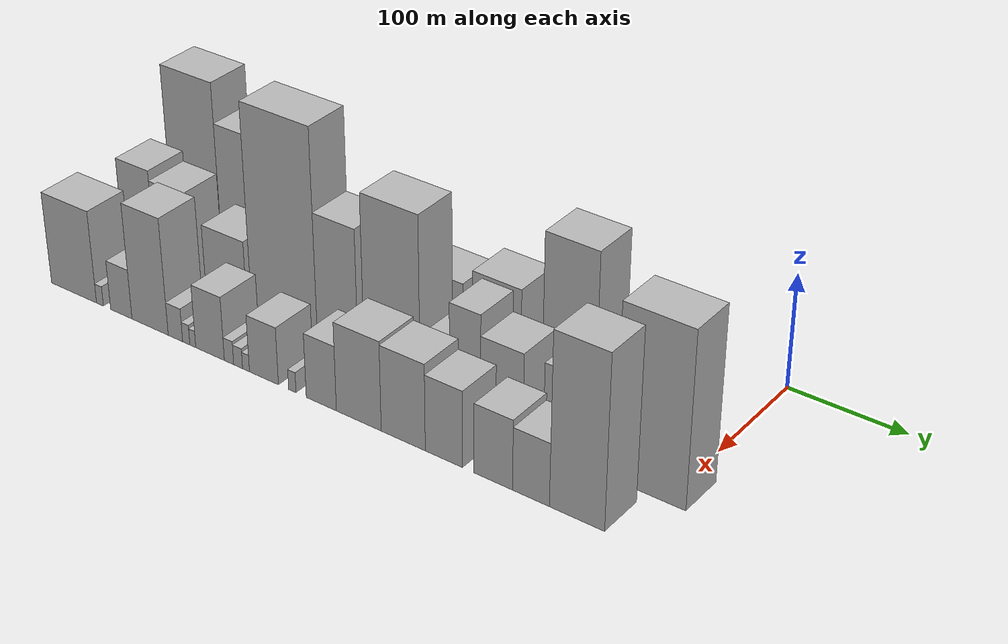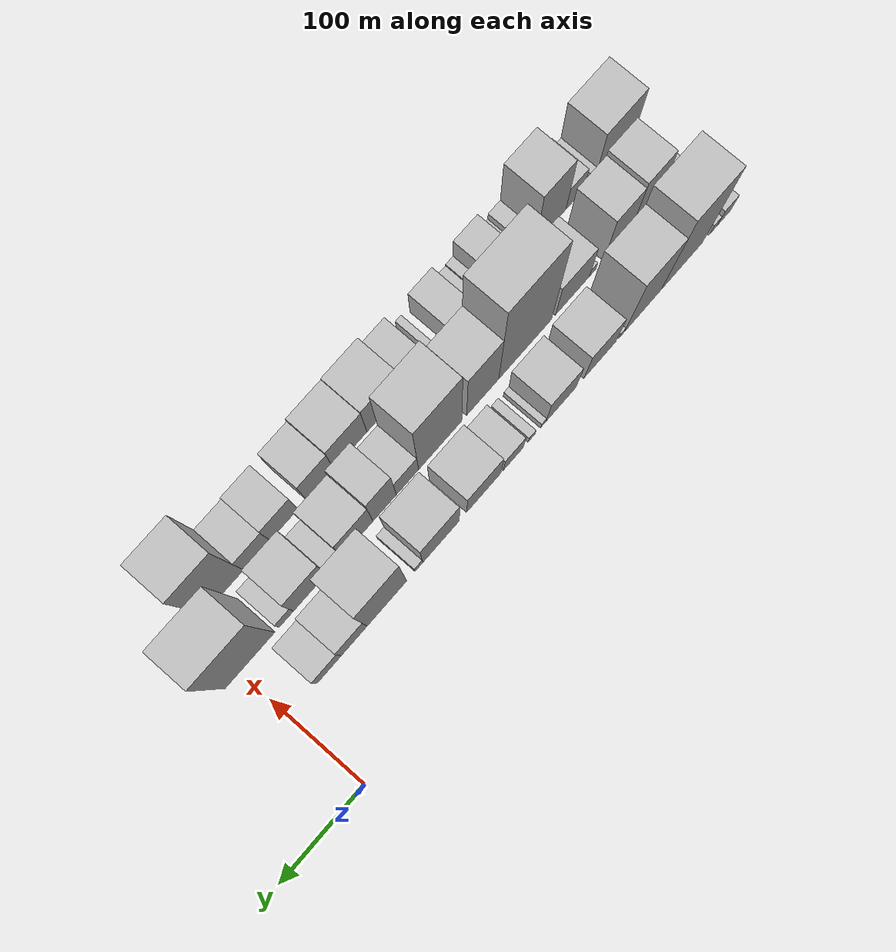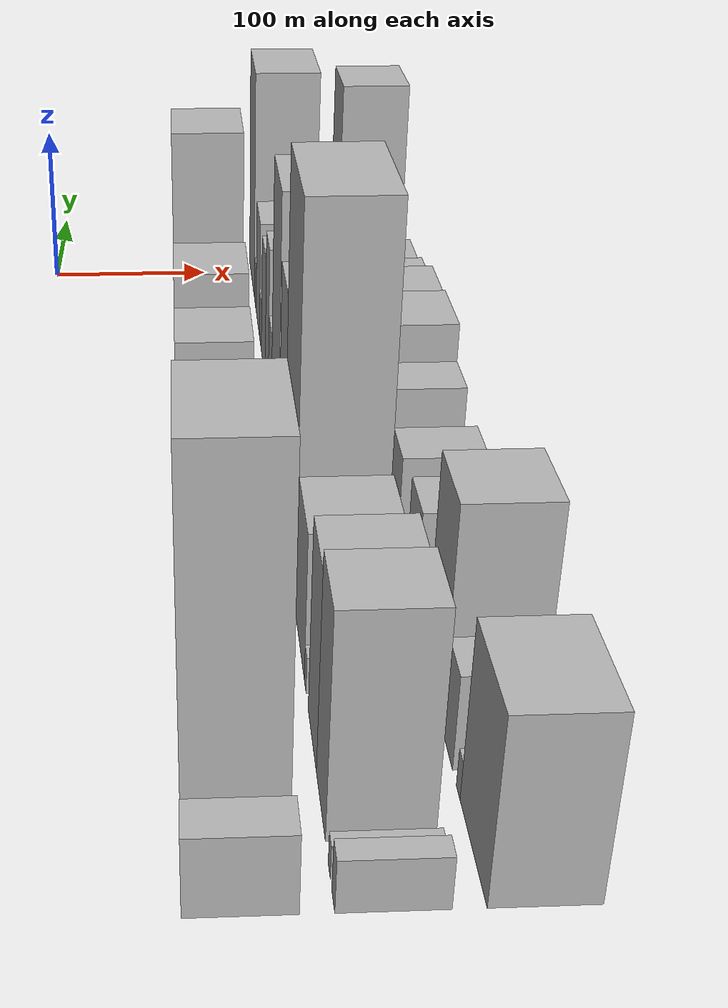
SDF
<sdf version="1.6">
 <world name="default">
  <model name="building_1">
   <static>1</static>
   <pose>100.0000 -538.9919 0 0.000000 0.000000 0.000000</pose>
   <link name="link">
    <pose>0 0 18.00 0 0 0</pose>
    <collision name="collision"><geometry><box><size>40.0000 18.0163 36.0000</size></box></geometry></collision>
    <visual name="visual">
     <cast_shadows>0</cast_shadows>
     <geometry><box><size>40.0000 18.0163 36.0000</size></box></geometry>
     <material>
      <script>
       <uri>model://HANNAS_wall/materials/scripts</uri>
       <uri>model://HANNAS_wall/materials/textures</uri>
       <name>vrc/HANNAS_wall</name>
      </script>
     </material>
    </visual>
   </link>
  </model>
  <model name="building_2">
   <static>1</static>
   <pose>100.0000 -524.8373 0 0.000000 0.000000 0.000000</pose>
   <link name="link">
    <pose>0 0 12.00 0 0 0</pose>
    <collision name="collision"><geometry><box><size>40.0000 10.2929 24.0000</size></box></geometry></collision>
    <visual name="visual">
     <cast_shadows>0</cast_shadows>
     <geometry><box><size>40.0000 10.2929 24.0000</size></box></geometry>
     <material>
      <script>
       <uri>model://HANNAS_wall/materials/scripts</uri>
       <uri>model://HANNAS_wall/materials/textures</uri>
       <name>vrc/HANNAS_wall</name>
      </script>
     </material>
    </visual>
   </link>
  </model>
  <model name="building_3">
   <static>1</static>
   <pose>100.0000 -483.8453 0 0.000000 0.000000 0.000000</pose>
   <link name="link">
    <pose>0 0 82.50 0 0 0</pose>
    <collision name="collision"><geometry><box><size>40.0000 53.6910 165.0000</size></box></geometry></collision>
    <visual name="visual">
     <cast_shadows>0</cast_shadows>
     <geometry><box><size>40.0000 53.6910 165.0000</size></box></geometry>
     <material>
      <script>
       <uri>model://HANNAS_wall/materials/scripts</uri>
       <uri>model://HANNAS_wall/materials/textures</uri>
       <name>vrc/HANNAS_wall</name>
      </script>
     </material>
    </visual>
   </link>
  </model>
  <model name="building_4">
   <static>1</static>
   <pose>100.0000 -433.3912 0 0.000000 0.000000 0.000000</pose>
   <link name="link">
    <pose>0 0 64.50 0 0 0</pose>
    <collision name="collision"><geometry><box><size>40.0000 47.2173 129.0000</size></box></geometry></collision>
    <visual name="visual">
     <cast_shadows>0</cast_shadows>
     <geometry><box><size>40.0000 47.2173 129.0000</size></box></geometry>
     <material>
      <script>
       <uri>model://HANNAS_wall/materials/scripts</uri>
       <uri>model://HANNAS_wall/materials/textures</uri>
       <name>vrc/HANNAS_wall</name>
      </script>
     </material>
    </visual>
   </link>
  </model>
  <model name="building_5">
   <static>1</static>
   <pose>100.0000 -406.5223 0 0.000000 0.000000 0.000000</pose>
   <link name="link">
    <pose>0 0 7.50 0 0 0</pose>
    <collision name="collision"><geometry><box><size>40.0000 6.5204 15.0000</size></box></geometry></collision>
    <visual name="visual">
     <cast_shadows>0</cast_shadows>
     <geometry><box><size>40.0000 6.5204 15.0000</size></box></geometry>
     <material>
      <script>
       <uri>model://HANNAS_wall/materials/scripts</uri>
       <uri>model://HANNAS_wall/materials/textures</uri>
       <name>vrc/HANNAS_wall</name>
      </script>
     </material>
    </visual>
   </link>
  </model>
  <model name="building_6">
   <static>1</static>
   <pose>100.0000 -379.0470 0 0.000000 0.000000 0.000000</pose>
   <link name="link">
    <pose>0 0 34.50 0 0 0</pose>
    <collision name="collision"><geometry><box><size>40.0000 40.4301 69.0000</size></box></geometry></collision>
    <visual name="visual">
     <cast_shadows>0</cast_shadows>
     <geometry><box><size>40.0000 40.4301 69.0000</size></box></geometry>
     <material>
      <script>
       <uri>model://HANNAS_wall/materials/scripts</uri>
       <uri>model://HANNAS_wall/materials/textures</uri>
       <name>vrc/HANNAS_wall</name>
      </script>
     </material>
    </visual>
   </link>
  </model>
  <model name="building_7">
   <static>1</static>
   <pose>100.0000 -329.8130 0 0.000000 0.000000 0.000000</pose>
   <link name="link">
    <pose>0 0 33.00 0 0 0</pose>
    <collision name="collision"><geometry><box><size>40.0000 38.0380 66.0000</size></box></geometry></collision>
    <visual name="visual">
     <cast_shadows>0</cast_shadows>
     <geometry><box><size>40.0000 38.0380 66.0000</size></box></geometry>
     <material>
      <script>
       <uri>model://HANNAS_wall/materials/scripts</uri>
       <uri>model://HANNAS_wall/materials/textures</uri>
       <name>vrc/HANNAS_wall</name>
      </script>
     </material>
    </visual>
   </link>
  </model>
  <model name="building_8">
   <static>1</static>
   <pose>100.0000 -307.6681 0 0.000000 0.000000 0.000000</pose>
   <link name="link">
    <pose>0 0 7.50 0 0 0</pose>
    <collision name="collision"><geometry><box><size>40.0000 6.2518 15.0000</size></box></geometry></collision>
    <visual name="visual">
     <cast_shadows>0</cast_shadows>
     <geometry><box><size>40.0000 6.2518 15.0000</size></box></geometry>
     <material>
      <script>
       <uri>model://HANNAS_wall/materials/scripts</uri>
       <uri>model://HANNAS_wall/materials/textures</uri>
       <name>vrc/HANNAS_wall</name>
      </script>
     </material>
    </visual>
   </link>
  </model>
  <model name="building_9">
   <static>1</static>
   <pose>100.0000 -293.1980 0 0.000000 0.000000 0.000000</pose>
   <link name="link">
    <pose>0 0 9.00 0 0 0</pose>
    <collision name="collision"><geometry><box><size>40.0000 8.6883 18.0000</size></box></geometry></collision>
    <visual name="visual">
     <cast_shadows>0</cast_shadows>
     <geometry><box><size>40.0000 8.6883 18.0000</size></box></geometry>
     <material>
      <script>
       <uri>model://HANNAS_wall/materials/scripts</uri>
       <uri>model://HANNAS_wall/materials/textures</uri>
       <name>vrc/HANNAS_wall</name>
      </script>
     </material>
    </visual>
   </link>
  </model>
  <model name="building_10">
   <static>1</static>
   <pose>100.0000 -270.4324 0 0.000000 0.000000 0.000000</pose>
   <link name="link">
    <pose>0 0 22.50 0 0 0</pose>
    <collision name="collision"><geometry><box><size>40.0000 24.8430 45.0000</size></box></geometry></collision>
    <visual name="visual">
     <cast_shadows>0</cast_shadows>
     <geometry><box><size>40.0000 24.8430 45.0000</size></box></geometry>
     <material>
      <script>
       <uri>model://HANNAS_wall/materials/scripts</uri>
       <uri>model://HANNAS_wall/materials/textures</uri>
       <name>vrc/HANNAS_wall</name>
      </script>
     </material>
    </visual>
   </link>
  </model>
  <model name="building_11">
   <static>1</static>
   <pose>100.0000 -234.0322 0 0.000000 0.000000 0.000000</pose>
   <link name="link">
    <pose>0 0 36.00 0 0 0</pose>
    <collision name="collision"><geometry><box><size>40.0000 41.9573 72.0000</size></box></geometry></collision>
    <visual name="visual">
     <cast_shadows>0</cast_shadows>
     <geometry><box><size>40.0000 41.9573 72.0000</size></box></geometry>
     <material>
      <script>
       <uri>model://HANNAS_wall/materials/scripts</uri>
       <uri>model://HANNAS_wall/materials/textures</uri>
       <name>vrc/HANNAS_wall</name>
      </script>
     </material>
    </visual>
   </link>
  </model>
  <model name="building_12">
   <static>1</static>
   <pose>100.0000 -181.8780 0 0.000000 0.000000 0.000000</pose>
   <link name="link">
    <pose>0 0 43.50 0 0 0</pose>
    <collision name="collision"><geometry><box><size>40.0000 44.3511 87.0000</size></box></geometry></collision>
    <visual name="visual">
     <cast_shadows>0</cast_shadows>
     <geometry><box><size>40.0000 44.3511 87.0000</size></box></geometry>
     <material>
      <script>
       <uri>model://HANNAS_wall/materials/scripts</uri>
       <uri>model://HANNAS_wall/materials/textures</uri>
       <name>vrc/HANNAS_wall</name>
      </script>
     </material>
    </visual>
   </link>
  </model>
  <model name="building_13">
   <static>1</static>
   <pose>100.0000 -154.9889 0 0.000000 0.000000 0.000000</pose>
   <link name="link">
    <pose>0 0 10.50 0 0 0</pose>
    <collision name="collision"><geometry><box><size>40.0000 9.4271 21.0000</size></box></geometry></collision>
    <visual name="visual">
     <cast_shadows>0</cast_shadows>
     <geometry><box><size>40.0000 9.4271 21.0000</size></box></geometry>
     <material>
      <script>
       <uri>model://HANNAS_wall/materials/scripts</uri>
       <uri>model://HANNAS_wall/materials/textures</uri>
       <name>vrc/HANNAS_wall</name>
      </script>
     </material>
    </visual>
   </link>
  </model>
  <model name="building_14">
   <static>1</static>
   <pose>100.0000 -116.7056 0 0.000000 0.000000 0.000000</pose>
   <link name="link">
    <pose>0 0 72.00 0 0 0</pose>
    <collision name="collision"><geometry><box><size>40.0000 47.1394 144.0000</size></box></geometry></collision>
    <visual name="visual">
     <cast_shadows>0</cast_shadows>
     <geometry><box><size>40.0000 47.1394 144.0000</size></box></geometry>
     <material>
      <script>
       <uri>model://HANNAS_wall/materials/scripts</uri>
       <uri>model://HANNAS_wall/materials/textures</uri>
       <name>vrc/HANNAS_wall</name>
      </script>
     </material>
    </visual>
   </link>
  </model>
  <model name="building_15">
   <static>1</static>
   <pose>100.0000 -77.7543 0 0.000000 0.000000 0.000000</pose>
   <link name="link">
    <pose>0 0 30.00 0 0 0</pose>
    <collision name="collision"><geometry><box><size>40.0000 30.7633 60.0000</size></box></geometry></collision>
    <visual name="visual">
     <cast_shadows>0</cast_shadows>
     <geometry><box><size>40.0000 30.7633 60.0000</size></box></geometry>
     <material>
      <script>
       <uri>model://HANNAS_wall/materials/scripts</uri>
       <uri>model://HANNAS_wall/materials/textures</uri>
       <name>vrc/HANNAS_wall</name>
      </script>
     </material>
    </visual>
   </link>
  </model>
  <model name="building_16">
   <static>1</static>
   <pose>100.0000 -48.2294 0 0.000000 0.000000 0.000000</pose>
   <link name="link">
    <pose>0 0 24.00 0 0 0</pose>
    <collision name="collision"><geometry><box><size>40.0000 28.2866 48.0000</size></box></geometry></collision>
    <visual name="visual">
     <cast_shadows>0</cast_shadows>
     <geometry><box><size>40.0000 28.2866 48.0000</size></box></geometry>
     <material>
      <script>
       <uri>model://HANNAS_wall/materials/scripts</uri>
       <uri>model://HANNAS_wall/materials/textures</uri>
       <name>vrc/HANNAS_wall</name>
      </script>
     </material>
    </visual>
   </link>
  </model>
  <model name="building_38">
   <static>1</static>
   <pose>152.0000 -543.0522 0 0.000000 0.000000 0.000000</pose>
   <link name="link">
    <pose>0 0 12.00 0 0 0</pose>
    <collision name="collision"><geometry><box><size>40.0000 9.8955 24.0000</size></box></geometry></collision>
    <visual name="visual">
     <cast_shadows>0</cast_shadows>
     <geometry><box><size>40.0000 9.8955 24.0000</size></box></geometry>
     <material>
      <script>
       <uri>model://HANNAS_wall/materials/scripts</uri>
       <uri>model://HANNAS_wall/materials/textures</uri>
       <name>vrc/HANNAS_wall</name>
      </script>
     </material>
    </visual>
   </link>
  </model>
  <model name="building_39">
   <static>1</static>
   <pose>152.0000 -529.5200 0 0.000000 0.000000 0.000000</pose>
   <link name="link">
    <pose>0 0 7.50 0 0 0</pose>
    <collision name="collision"><geometry><box><size>40.0000 7.1690 15.0000</size></box></geometry></collision>
    <visual name="visual">
     <cast_shadows>0</cast_shadows>
     <geometry><box><size>40.0000 7.1690 15.0000</size></box></geometry>
     <material>
      <script>
       <uri>model://HANNAS_wall/materials/scripts</uri>
       <uri>model://HANNAS_wall/materials/textures</uri>
       <name>vrc/HANNAS_wall</name>
      </script>
     </material>
    </visual>
   </link>
  </model>
  <model name="building_40">
   <static>1</static>
   <pose>152.0000 -498.5052 0 0.000000 0.000000 0.000000</pose>
   <link name="link">
    <pose>0 0 51.00 0 0 0</pose>
    <collision name="collision"><geometry><box><size>40.0000 34.8606 102.0000</size></box></geometry></collision>
    <visual name="visual">
     <cast_shadows>0</cast_shadows>
     <geometry><box><size>40.0000 34.8606 102.0000</size></box></geometry>
     <material>
      <script>
       <uri>model://HANNAS_wall/materials/scripts</uri>
       <uri>model://HANNAS_wall/materials/textures</uri>
       <name>vrc/HANNAS_wall</name>
      </script>
     </material>
    </visual>
   </link>
  </model>
  <model name="building_41">
   <static>1</static>
   <pose>152.0000 -463.4202 0 0.000000 0.000000 0.000000</pose>
   <link name="link">
    <pose>0 0 46.50 0 0 0</pose>
    <collision name="collision"><geometry><box><size>40.0000 35.3093 93.0000</size></box></geometry></collision>
    <visual name="visual">
     <cast_shadows>0</cast_shadows>
     <geometry><box><size>40.0000 35.3093 93.0000</size></box></geometry>
     <material>
      <script>
       <uri>model://HANNAS_wall/materials/scripts</uri>
       <uri>model://HANNAS_wall/materials/textures</uri>
       <name>vrc/HANNAS_wall</name>
      </script>
     </material>
    </visual>
   </link>
  </model>
  <model name="building_42">
   <static>1</static>
   <pose>152.0000 -431.5094 0 0.000000 0.000000 0.000000</pose>
   <link name="link">
    <pose>0 0 9.00 0 0 0</pose>
    <collision name="collision"><geometry><box><size>40.0000 8.5124 18.0000</size></box></geometry></collision>
    <visual name="visual">
     <cast_shadows>0</cast_shadows>
     <geometry><box><size>40.0000 8.5124 18.0000</size></box></geometry>
     <material>
      <script>
       <uri>model://HANNAS_wall/materials/scripts</uri>
       <uri>model://HANNAS_wall/materials/textures</uri>
       <name>vrc/HANNAS_wall</name>
      </script>
     </material>
    </visual>
   </link>
  </model>
  <model name="building_43">
   <static>1</static>
   <pose>152.0000 -405.7660 0 0.000000 0.000000 0.000000</pose>
   <link name="link">
    <pose>0 0 36.00 0 0 0</pose>
    <collision name="collision"><geometry><box><size>40.0000 42.9744 72.0000</size></box></geometry></collision>
    <visual name="visual">
     <cast_shadows>0</cast_shadows>
     <geometry><box><size>40.0000 42.9744 72.0000</size></box></geometry>
     <material>
      <script>
       <uri>model://HANNAS_wall/materials/scripts</uri>
       <uri>model://HANNAS_wall/materials/textures</uri>
       <name>vrc/HANNAS_wall</name>
      </script>
     </material>
    </visual>
   </link>
  </model>
  <model name="building_44">
   <static>1</static>
   <pose>152.0000 -346.0198 0 0.000000 0.000000 0.000000</pose>
   <link name="link">
    <pose>0 0 97.50 0 0 0</pose>
    <collision name="collision"><geometry><box><size>40.0000 66.5181 195.0000</size></box></geometry></collision>
    <visual name="visual">
     <cast_shadows>0</cast_shadows>
     <geometry><box><size>40.0000 66.5181 195.0000</size></box></geometry>
     <material>
      <script>
       <uri>model://HANNAS_wall/materials/scripts</uri>
       <uri>model://HANNAS_wall/materials/textures</uri>
       <name>vrc/HANNAS_wall</name>
      </script>
     </material>
    </visual>
   </link>
  </model>
  <model name="building_45">
   <static>1</static>
   <pose>152.0000 -292.8285 0 0.000000 0.000000 0.000000</pose>
   <link name="link">
    <pose>0 0 61.50 0 0 0</pose>
    <collision name="collision"><geometry><box><size>40.0000 39.8645 123.0000</size></box></geometry></collision>
    <visual name="visual">
     <cast_shadows>0</cast_shadows>
     <geometry><box><size>40.0000 39.8645 123.0000</size></box></geometry>
     <material>
      <script>
       <uri>model://HANNAS_wall/materials/scripts</uri>
       <uri>model://HANNAS_wall/materials/textures</uri>
       <name>vrc/HANNAS_wall</name>
      </script>
     </material>
    </visual>
   </link>
  </model>
  <model name="building_46">
   <static>1</static>
   <pose>152.0000 -240.3963 0 0.000000 0.000000 0.000000</pose>
   <link name="link">
    <pose>0 0 78.00 0 0 0</pose>
    <collision name="collision"><geometry><box><size>40.0000 52.9998 156.0000</size></box></geometry></collision>
    <visual name="visual">
     <cast_shadows>0</cast_shadows>
     <geometry><box><size>40.0000 52.9998 156.0000</size></box></geometry>
     <material>
      <script>
       <uri>model://HANNAS_wall/materials/scripts</uri>
       <uri>model://HANNAS_wall/materials/textures</uri>
       <name>vrc/HANNAS_wall</name>
      </script>
     </material>
    </visual>
   </link>
  </model>
  <model name="building_47">
   <static>1</static>
   <pose>152.0000 -200.2656 0 0.000000 0.000000 0.000000</pose>
   <link name="link">
    <pose>0 0 27.00 0 0 0</pose>
    <collision name="collision"><geometry><box><size>40.0000 27.2617 54.0000</size></box></geometry></collision>
    <visual name="visual">
     <cast_shadows>0</cast_shadows>
     <geometry><box><size>40.0000 27.2617 54.0000</size></box></geometry>
     <material>
      <script>
       <uri>model://HANNAS_wall/materials/scripts</uri>
       <uri>model://HANNAS_wall/materials/textures</uri>
       <name>vrc/HANNAS_wall</name>
      </script>
     </material>
    </visual>
   </link>
  </model>
  <model name="building_48">
   <static>1</static>
   <pose>152.0000 -172.6165 0 0.000000 0.000000 0.000000</pose>
   <link name="link">
    <pose>0 0 46.50 0 0 0</pose>
    <collision name="collision"><geometry><box><size>40.0000 28.0365 93.0000</size></box></geometry></collision>
    <visual name="visual">
     <cast_shadows>0</cast_shadows>
     <geometry><box><size>40.0000 28.0365 93.0000</size></box></geometry>
     <material>
      <script>
       <uri>model://HANNAS_wall/materials/scripts</uri>
       <uri>model://HANNAS_wall/materials/textures</uri>
       <name>vrc/HANNAS_wall</name>
      </script>
     </material>
    </visual>
   </link>
  </model>
  <model name="building_49">
   <static>1</static>
   <pose>152.0000 -139.6529 0 0.000000 0.000000 0.000000</pose>
   <link name="link">
    <pose>0 0 37.50 0 0 0</pose>
    <collision name="collision"><geometry><box><size>40.0000 37.8907 75.0000</size></box></geometry></collision>
    <visual name="visual">
     <cast_shadows>0</cast_shadows>
     <geometry><box><size>40.0000 37.8907 75.0000</size></box></geometry>
     <material>
      <script>
       <uri>model://HANNAS_wall/materials/scripts</uri>
       <uri>model://HANNAS_wall/materials/textures</uri>
       <name>vrc/HANNAS_wall</name>
      </script>
     </material>
    </visual>
   </link>
  </model>
  <model name="building_50">
   <static>1</static>
   <pose>152.0000 -111.7760 0 0.000000 0.000000 0.000000</pose>
   <link name="link">
    <pose>0 0 15.00 0 0 0</pose>
    <collision name="collision"><geometry><box><size>40.0000 17.8630 30.0000</size></box></geometry></collision>
    <visual name="visual">
     <cast_shadows>0</cast_shadows>
     <geometry><box><size>40.0000 17.8630 30.0000</size></box></geometry>
     <material>
      <script>
       <uri>model://HANNAS_wall/materials/scripts</uri>
       <uri>model://HANNAS_wall/materials/textures</uri>
       <name>vrc/HANNAS_wall</name>
      </script>
     </material>
    </visual>
   </link>
  </model>
  <model name="building_51">
   <static>1</static>
   <pose>152.0000 -83.2439 0 0.000000 0.000000 0.000000</pose>
   <link name="link">
    <pose>0 0 37.50 0 0 0</pose>
    <collision name="collision"><geometry><box><size>40.0000 39.2013 75.0000</size></box></geometry></collision>
    <visual name="visual">
     <cast_shadows>0</cast_shadows>
     <geometry><box><size>40.0000 39.2013 75.0000</size></box></geometry>
     <material>
      <script>
       <uri>model://HANNAS_wall/materials/scripts</uri>
       <uri>model://HANNAS_wall/materials/textures</uri>
       <name>vrc/HANNAS_wall</name>
      </script>
     </material>
    </visual>
   </link>
  </model>
  <model name="building_52">
   <static>1</static>
   <pose>152.0000 -55.1002 0 0.000000 0.000000 0.000000</pose>
   <link name="link">
    <pose>0 0 15.00 0 0 0</pose>
    <collision name="collision"><geometry><box><size>40.0000 17.0862 30.0000</size></box></geometry></collision>
    <visual name="visual">
     <cast_shadows>0</cast_shadows>
     <geometry><box><size>40.0000 17.0862 30.0000</size></box></geometry>
     <material>
      <script>
       <uri>model://HANNAS_wall/materials/scripts</uri>
       <uri>model://HANNAS_wall/materials/textures</uri>
       <name>vrc/HANNAS_wall</name>
      </script>
     </material>
    </visual>
   </link>
  </model>
  <model name="building_53">
   <static>1</static>
   <pose>152.0000 -12.3465 0 0.000000 0.000000 0.000000</pose>
   <link name="link">
    <pose>0 0 75.00 0 0 0</pose>
    <collision name="collision"><geometry><box><size>40.0000 58.4212 150.0000</size></box></geometry></collision>
    <visual name="visual">
     <cast_shadows>0</cast_shadows>
     <geometry><box><size>40.0000 58.4212 150.0000</size></box></geometry>
     <material>
      <script>
       <uri>model://HANNAS_wall/materials/scripts</uri>
       <uri>model://HANNAS_wall/materials/textures</uri>
       <name>vrc/HANNAS_wall</name>
      </script>
     </material>
    </visual>
   </link>
  </model>
  <model name="building_67">
   <static>1</static>
   <pose>204.0000 -522.8611 0 0.000000 0.000000 0.000000</pose>
   <link name="link">
    <pose>0 0 42.00 0 0 0</pose>
    <collision name="collision"><geometry><box><size>40.0000 50.2778 84.0000</size></box></geometry></collision>
    <visual name="visual">
     <cast_shadows>0</cast_shadows>
     <geometry><box><size>40.0000 50.2778 84.0000</size></box></geometry>
     <material>
      <script>
       <uri>model://HANNAS_wall/materials/scripts</uri>
       <uri>model://HANNAS_wall/materials/textures</uri>
       <name>vrc/HANNAS_wall</name>
      </script>
     </material>
    </visual>
   </link>
  </model>
  <model name="building_68">
   <static>1</static>
   <pose>204.0000 -493.9434 0 0.000000 0.000000 0.000000</pose>
   <link name="link">
    <pose>0 0 9.00 0 0 0</pose>
    <collision name="collision"><geometry><box><size>40.0000 7.5576 18.0000</size></box></geometry></collision>
    <visual name="visual">
     <cast_shadows>0</cast_shadows>
     <geometry><box><size>40.0000 7.5576 18.0000</size></box></geometry>
     <material>
      <script>
       <uri>model://HANNAS_wall/materials/scripts</uri>
       <uri>model://HANNAS_wall/materials/textures</uri>
       <name>vrc/HANNAS_wall</name>
      </script>
     </material>
    </visual>
   </link>
  </model>
  <model name="building_69">
   <static>1</static>
   <pose>204.0000 -470.5502 0 0.000000 0.000000 0.000000</pose>
   <link name="link">
    <pose>0 0 22.50 0 0 0</pose>
    <collision name="collision"><geometry><box><size>40.0000 23.2287 45.0000</size></box></geometry></collision>
    <visual name="visual">
     <cast_shadows>0</cast_shadows>
     <geometry><box><size>40.0000 23.2287 45.0000</size></box></geometry>
     <material>
      <script>
       <uri>model://HANNAS_wall/materials/scripts</uri>
       <uri>model://HANNAS_wall/materials/textures</uri>
       <name>vrc/HANNAS_wall</name>
      </script>
     </material>
    </visual>
   </link>
  </model>
  <model name="building_70">
   <static>1</static>
   <pose>204.0000 -439.6035 0 0.000000 0.000000 0.000000</pose>
   <link name="link">
    <pose>0 0 52.50 0 0 0</pose>
    <collision name="collision"><geometry><box><size>40.0000 38.6647 105.0000</size></box></geometry></collision>
    <visual name="visual">
     <cast_shadows>0</cast_shadows>
     <geometry><box><size>40.0000 38.6647 105.0000</size></box></geometry>
     <material>
      <script>
       <uri>model://HANNAS_wall/materials/scripts</uri>
       <uri>model://HANNAS_wall/materials/textures</uri>
       <name>vrc/HANNAS_wall</name>
      </script>
     </material>
    </visual>
   </link>
  </model>
  <model name="building_71">
   <static>1</static>
   <pose>204.0000 -412.6714 0 0.000000 0.000000 0.000000</pose>
   <link name="link">
    <pose>0 0 15.00 0 0 0</pose>
    <collision name="collision"><geometry><box><size>40.0000 15.1995 30.0000</size></box></geometry></collision>
    <visual name="visual">
     <cast_shadows>0</cast_shadows>
     <geometry><box><size>40.0000 15.1995 30.0000</size></box></geometry>
     <material>
      <script>
       <uri>model://HANNAS_wall/materials/scripts</uri>
       <uri>model://HANNAS_wall/materials/textures</uri>
       <name>vrc/HANNAS_wall</name>
      </script>
     </material>
    </visual>
   </link>
  </model>
  <model name="building_72">
   <static>1</static>
   <pose>204.0000 -401.3355 0 0.000000 0.000000 0.000000</pose>
   <link name="link">
    <pose>0 0 9.00 0 0 0</pose>
    <collision name="collision"><geometry><box><size>40.0000 7.4724 18.0000</size></box></geometry></collision>
    <visual name="visual">
     <cast_shadows>0</cast_shadows>
     <geometry><box><size>40.0000 7.4724 18.0000</size></box></geometry>
     <material>
      <script>
       <uri>model://HANNAS_wall/materials/scripts</uri>
       <uri>model://HANNAS_wall/materials/textures</uri>
       <name>vrc/HANNAS_wall</name>
      </script>
     </material>
    </visual>
   </link>
  </model>
  <model name="building_73">
   <static>1</static>
   <pose>204.0000 -394.5427 0 0.000000 0.000000 0.000000</pose>
   <link name="link">
    <pose>0 0 7.50 0 0 0</pose>
    <collision name="collision"><geometry><box><size>40.0000 6.1131 15.0000</size></box></geometry></collision>
    <visual name="visual">
     <cast_shadows>0</cast_shadows>
     <geometry><box><size>40.0000 6.1131 15.0000</size></box></geometry>
     <material>
      <script>
       <uri>model://HANNAS_wall/materials/scripts</uri>
       <uri>model://HANNAS_wall/materials/textures</uri>
       <name>vrc/HANNAS_wall</name>
      </script>
     </material>
    </visual>
   </link>
  </model>
  <model name="building_74">
   <static>1</static>
   <pose>204.0000 -376.7482 0 0.000000 0.000000 0.000000</pose>
   <link name="link">
    <pose>0 0 28.50 0 0 0</pose>
    <collision name="collision"><geometry><box><size>40.0000 29.4760 57.0000</size></box></geometry></collision>
    <visual name="visual">
     <cast_shadows>0</cast_shadows>
     <geometry><box><size>40.0000 29.4760 57.0000</size></box></geometry>
     <material>
      <script>
       <uri>model://HANNAS_wall/materials/scripts</uri>
       <uri>model://HANNAS_wall/materials/textures</uri>
       <name>vrc/HANNAS_wall</name>
      </script>
     </material>
    </visual>
   </link>
  </model>
  <model name="building_75">
   <static>1</static>
   <pose>204.0000 -357.3080 0 0.000000 0.000000 0.000000</pose>
   <link name="link">
    <pose>0 0 10.50 0 0 0</pose>
    <collision name="collision"><geometry><box><size>40.0000 9.4044 21.0000</size></box></geometry></collision>
    <visual name="visual">
     <cast_shadows>0</cast_shadows>
     <geometry><box><size>40.0000 9.4044 21.0000</size></box></geometry>
     <material>
      <script>
       <uri>model://HANNAS_wall/materials/scripts</uri>
       <uri>model://HANNAS_wall/materials/textures</uri>
       <name>vrc/HANNAS_wall</name>
      </script>
     </material>
    </visual>
   </link>
  </model>
  <model name="building_76">
   <static>1</static>
   <pose>204.0000 -348.1183 0 0.000000 0.000000 0.000000</pose>
   <link name="link">
    <pose>0 0 9.00 0 0 0</pose>
    <collision name="collision"><geometry><box><size>40.0000 8.9750 18.0000</size></box></geometry></collision>
    <visual name="visual">
     <cast_shadows>0</cast_shadows>
     <geometry><box><size>40.0000 8.9750 18.0000</size></box></geometry>
     <material>
      <script>
       <uri>model://HANNAS_wall/materials/scripts</uri>
       <uri>model://HANNAS_wall/materials/textures</uri>
       <name>vrc/HANNAS_wall</name>
      </script>
     </material>
    </visual>
   </link>
  </model>
  <model name="building_77">
   <static>1</static>
   <pose>204.0000 -340.1624 0 0.000000 0.000000 0.000000</pose>
   <link name="link">
    <pose>0 0 7.50 0 0 0</pose>
    <collision name="collision"><geometry><box><size>40.0000 6.9367 15.0000</size></box></geometry></collision>
    <visual name="visual">
     <cast_shadows>0</cast_shadows>
     <geometry><box><size>40.0000 6.9367 15.0000</size></box></geometry>
     <material>
      <script>
       <uri>model://HANNAS_wall/materials/scripts</uri>
       <uri>model://HANNAS_wall/materials/textures</uri>
       <name>vrc/HANNAS_wall</name>
      </script>
     </material>
    </visual>
   </link>
  </model>
  <model name="building_78">
   <static>1</static>
   <pose>204.0000 -322.2944 0 0.000000 0.000000 0.000000</pose>
   <link name="link">
    <pose>0 0 25.50 0 0 0</pose>
    <collision name="collision"><geometry><box><size>40.0000 28.7993 51.0000</size></box></geometry></collision>
    <visual name="visual">
     <cast_shadows>0</cast_shadows>
     <geometry><box><size>40.0000 28.7993 51.0000</size></box></geometry>
     <material>
      <script>
       <uri>model://HANNAS_wall/materials/scripts</uri>
       <uri>model://HANNAS_wall/materials/textures</uri>
       <name>vrc/HANNAS_wall</name>
      </script>
     </material>
    </visual>
   </link>
  </model>
  <model name="building_79">
   <static>1</static>
   <pose>204.0000 -294.2928 0 0.000000 0.000000 0.000000</pose>
   <link name="link">
    <pose>0 0 9.00 0 0 0</pose>
    <collision name="collision"><geometry><box><size>40.0000 7.2039 18.0000</size></box></geometry></collision>
    <visual name="visual">
     <cast_shadows>0</cast_shadows>
     <geometry><box><size>40.0000 7.2039 18.0000</size></box></geometry>
     <material>
      <script>
       <uri>model://HANNAS_wall/materials/scripts</uri>
       <uri>model://HANNAS_wall/materials/textures</uri>
       <name>vrc/HANNAS_wall</name>
      </script>
     </material>
    </visual>
   </link>
  </model>
  <model name="building_80">
   <static>1</static>
   <pose>204.0000 -266.2374 0 0.000000 0.000000 0.000000</pose>
   <link name="link">
    <pose>0 0 28.50 0 0 0</pose>
    <collision name="collision"><geometry><box><size>40.0000 28.9069 57.0000</size></box></geometry></collision>
    <visual name="visual">
     <cast_shadows>0</cast_shadows>
     <geometry><box><size>40.0000 28.9069 57.0000</size></box></geometry>
     <material>
      <script>
       <uri>model://HANNAS_wall/materials/scripts</uri>
       <uri>model://HANNAS_wall/materials/textures</uri>
       <name>vrc/HANNAS_wall</name>
      </script>
     </material>
    </visual>
   </link>
  </model>
  <model name="building_81">
   <static>1</static>
   <pose>204.0000 -230.7549 0 0.000000 0.000000 0.000000</pose>
   <link name="link">
    <pose>0 0 39.00 0 0 0</pose>
    <collision name="collision"><geometry><box><size>40.0000 42.0583 78.0000</size></box></geometry></collision>
    <visual name="visual">
     <cast_shadows>0</cast_shadows>
     <geometry><box><size>40.0000 42.0583 78.0000</size></box></geometry>
     <material>
      <script>
       <uri>model://HANNAS_wall/materials/scripts</uri>
       <uri>model://HANNAS_wall/materials/textures</uri>
       <name>vrc/HANNAS_wall</name>
      </script>
     </material>
    </visual>
   </link>
  </model>
  <model name="building_82">
   <static>1</static>
   <pose>204.0000 -189.5962 0 0.000000 0.000000 0.000000</pose>
   <link name="link">
    <pose>0 0 37.50 0 0 0</pose>
    <collision name="collision"><geometry><box><size>40.0000 40.2590 75.0000</size></box></geometry></collision>
    <visual name="visual">
     <cast_shadows>0</cast_shadows>
     <geometry><box><size>40.0000 40.2590 75.0000</size></box></geometry>
     <material>
      <script>
       <uri>model://HANNAS_wall/materials/scripts</uri>
       <uri>model://HANNAS_wall/materials/textures</uri>
       <name>vrc/HANNAS_wall</name>
      </script>
     </material>
    </visual>
   </link>
  </model>
  <model name="building_83">
   <static>1</static>
   <pose>204.0000 -152.8310 0 0.000000 0.000000 0.000000</pose>
   <link name="link">
    <pose>0 0 33.00 0 0 0</pose>
    <collision name="collision"><geometry><box><size>40.0000 33.2714 66.0000</size></box></geometry></collision>
    <visual name="visual">
     <cast_shadows>0</cast_shadows>
     <geometry><box><size>40.0000 33.2714 66.0000</size></box></geometry>
     <material>
      <script>
       <uri>model://HANNAS_wall/materials/scripts</uri>
       <uri>model://HANNAS_wall/materials/textures</uri>
       <name>vrc/HANNAS_wall</name>
      </script>
     </material>
    </visual>
   </link>
  </model>
  <model name="building_84">
   <static>1</static>
   <pose>204.0000 -109.5152 0 0.000000 0.000000 0.000000</pose>
   <link name="link">
    <pose>0 0 30.00 0 0 0</pose>
    <collision name="collision"><geometry><box><size>40.0000 33.3602 60.0000</size></box></geometry></collision>
    <visual name="visual">
     <cast_shadows>0</cast_shadows>
     <geometry><box><size>40.0000 33.3602 60.0000</size></box></geometry>
     <material>
      <script>
       <uri>model://HANNAS_wall/materials/scripts</uri>
       <uri>model://HANNAS_wall/materials/textures</uri>
       <name>vrc/HANNAS_wall</name>
      </script>
     </material>
    </visual>
   </link>
  </model>
  <model name="building_85">
   <static>1</static>
   <pose>204.0000 -77.1870 0 0.000000 0.000000 0.000000</pose>
   <link name="link">
    <pose>0 0 27.00 0 0 0</pose>
    <collision name="collision"><geometry><box><size>40.0000 31.2963 54.0000</size></box></geometry></collision>
    <visual name="visual">
     <cast_shadows>0</cast_shadows>
     <geometry><box><size>40.0000 31.2963 54.0000</size></box></geometry>
     <material>
      <script>
       <uri>model://HANNAS_wall/materials/scripts</uri>
       <uri>model://HANNAS_wall/materials/textures</uri>
       <name>vrc/HANNAS_wall</name>
      </script>
     </material>
    </visual>
   </link>
  </model>
  <model name="building_86">
   <static>1</static>
   <pose>204.0000 -38.6771 0 0.000000 0.000000 0.000000</pose>
   <link name="link">
    <pose>0 0 73.50 0 0 0</pose>
    <collision name="collision"><geometry><box><size>40.0000 45.7235 147.0000</size></box></geometry></collision>
    <visual name="visual">
     <cast_shadows>0</cast_shadows>
     <geometry><box><size>40.0000 45.7235 147.0000</size></box></geometry>
     <material>
      <script>
       <uri>model://HANNAS_wall/materials/scripts</uri>
       <uri>model://HANNAS_wall/materials/textures</uri>
       <name>vrc/HANNAS_wall</name>
      </script>
     </material>
    </visual>
   </link>
  </model>
 </world>
</sdf>
